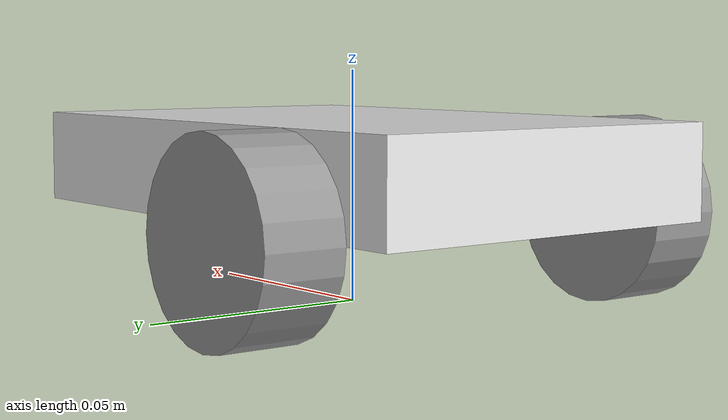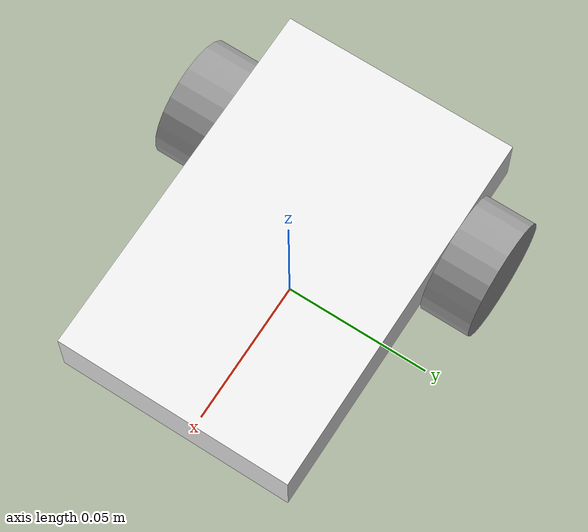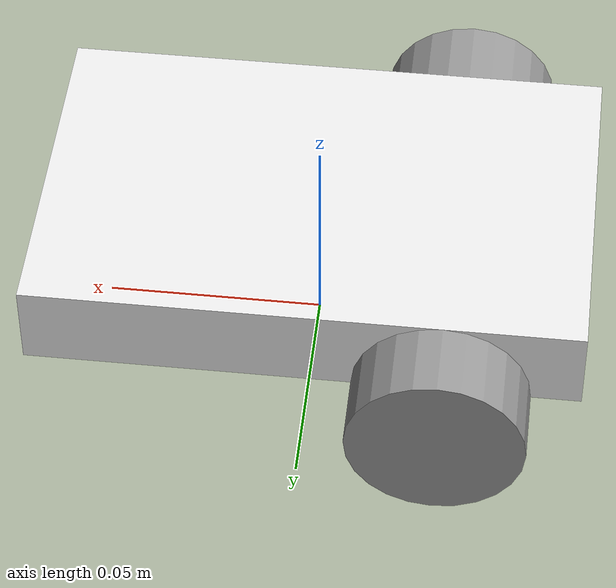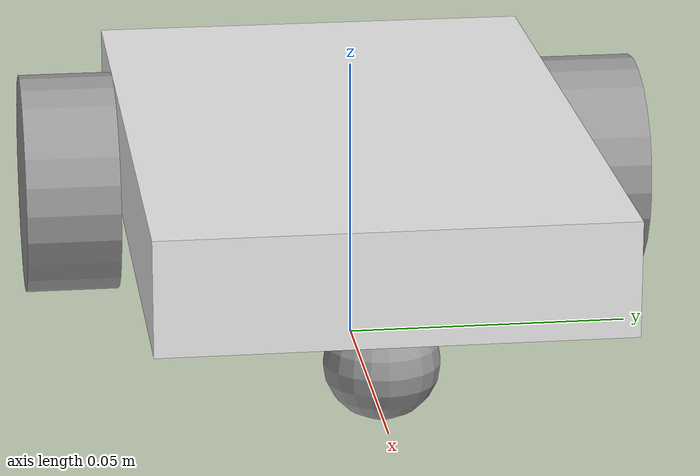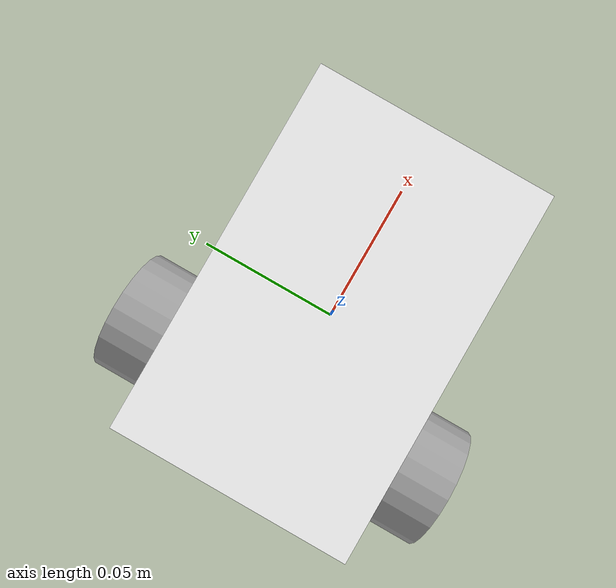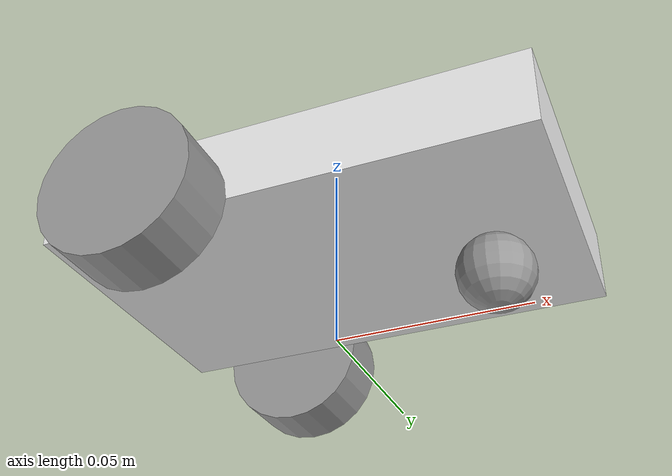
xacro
<?xml version="1.0"?>
<robot xmlns:xacro="http://www.ros.org/wiki/xacro">
    <xacro:property name="base_length" value="0.125"/>
    <xacro:property name="base_width" value="0.08"/>
    <xacro:property name="base_height" value="0.02"/>
    <xacro:property name="wheel_radius" value="0.02"/>
    <xacro:property name="wheel_length" value="0.017"/>
    <xacro:property name="caster_radius" value="${wheel_radius / 2.0}"/>

    <link name="base_footprint"/>

    <link name="base_link">
        <visual>
            <geometry>
                <box size="${base_length} ${base_width} ${base_height}"/>
            </geometry>
            <origin xyz="0 0 ${base_height / 2.0}" rpy="0 0 0"/>
            <material name="white"/>
        </visual>
        <xacro:box_inertia m="5.0" l="${2*base_length}" w="${2*base_width}" h="${2*base_height}"
         xyz="0 0 ${2*base_height / 2.0}" rpy="0 0 0" />
        <collision>
            <geometry>
                <box size="${base_length} ${base_width} ${base_height}"/>
            </geometry>
            <origin xyz="0 0 ${base_height / 2.0}" rpy="0 0 0"/>
        </collision>
    </link>

    <xacro:macro name="wheel_link" params="prefix">
        <link name="${prefix}_wheel_link">
            <visual>
                <geometry>
                    <cylinder radius="${wheel_radius}" length="${wheel_length}"/>
                </geometry>
                <origin xyz="0 0 0" rpy="${pi/2.0} 0 0"/>
                <material name ="grey"/>
            </visual>
            <xacro:cylinder_inertia m="1.0" r="${2*wheel_radius}" h="${2*wheel_length}" xyz="0 0 0" rpy="${pi/2.0} 0 0"/>
            <collision>
                <geometry>
                    <cylinder radius="${wheel_radius}" length="${wheel_length}"/>
                </geometry>
                <origin xyz="0 0 0" rpy="${pi/2.0} 0 0"/>
            </collision>
        </link>
    </xacro:macro>

    <xacro:wheel_link prefix="left"/>
    <xacro:wheel_link prefix="right"/>

    <link name="caster_wheel_link">
        <visual>
            <geometry>
                <sphere radius="${caster_radius}"/>
            </geometry>
            <origin xyz="0 0 0" rpy="0 0 0"/>
            <material name="grey"/>
        </visual>
        <xacro:sphere_inertia m="0.5" r="${2*caster_radius}" xyz="0 0 0" rpy="0 0 0" />
        <collision>
            <geometry>
                <sphere radius="${caster_radius}"/>
            </geometry>
            <origin xyz="0 0 0" rpy="0 0 0"/>
        </collision>
    </link>

    <joint name="base_joint" type="fixed">
        <parent link="base_footprint"/>
        <child link="base_link"/>
        <origin xyz="0 0 ${wheel_radius}" rpy="0 0 0"/>
    </joint>

    <joint name="base_right_wheel_joint" type="continuous">
        <parent link="base_link"/>
        <child link="right_wheel_link"/>
        <origin xyz="${-base_length / 4.0} ${-((base_width / 2.0) + (wheel_length/2.0))} 0" rpy="0 0 0"/>
        <axis xyz="0 1 0"/>
        <limit velocity="100" effort="100"/>
    </joint>

    <joint name="base_left_wheel_joint" type="continuous">
        <parent link="base_link"/>
        <child link="left_wheel_link"/>
        <origin xyz="${-base_length / 4.0} ${(base_width / 2.0) + (wheel_length/2.0)} 0" rpy="0 0 0"/>
        <axis xyz="0 1 0"/>
        <limit velocity="100" effort="100"/>
    </joint>

    <joint name="base_caster_wheel_joint" type="fixed">
        <parent link="base_link"/>
        <child link="caster_wheel_link"/>
        <origin xyz="${base_length / 3.0} 0 ${-caster_radius}" rpy="0 0 0"/>
    </joint>
</robot>
